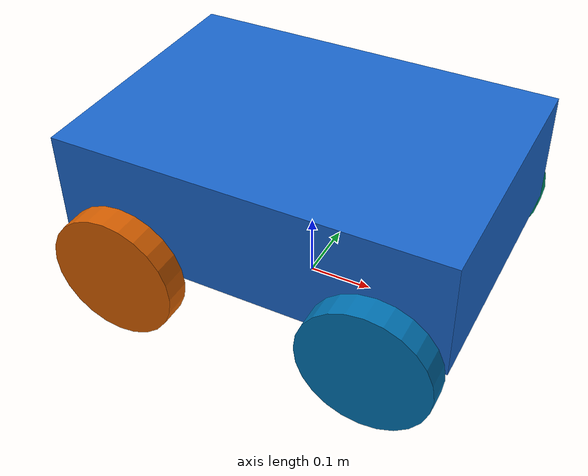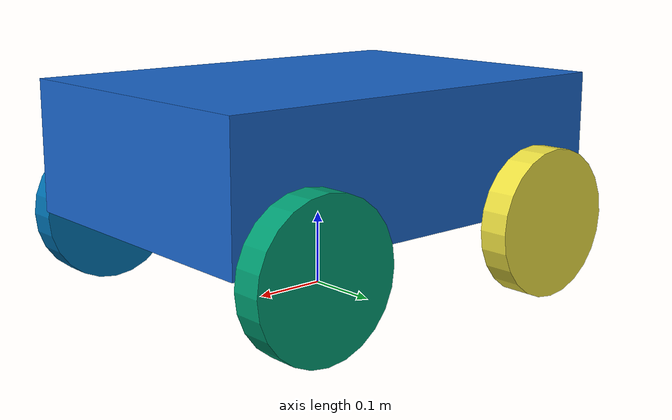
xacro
<?xml version="1.0"?>
<robot xmlns:xacro="http://www.ros.org/wiki/xacro" name="shopping_robot">
  <xacro:property name="length" value="0.60"/>
  <xacro:property name="width" value="0.50"/>
  <xacro:property name="height" value="0.18"/>
  <xacro:property name="wheel_radius" value="0.10"/>
  <xacro:property name="skid_track_factor" value="2.0"/>
  <xacro:property name="wheel_width" value="0.04"/>
  <xacro:arg name="anchor_count" default="3"/>
  <xacro:arg name="odom_source" default="ekf"/>
  <xacro:property name="anchor_0_x" value="0.0"/><xacro:property name="anchor_0_y" value="0.22"/>
  <xacro:property name="anchor_1_x" value="0.0"/><xacro:property name="anchor_1_y" value="-0.22"/>
  <xacro:property name="anchor_2_x" value="-0.25"/><xacro:property name="anchor_2_y" value="0.0"/>
  <link name="base_footprint"/>
  <joint name="base_joint" type="fixed"><parent link="base_footprint"/><child link="base_link"/><origin xyz="0 0 0.20"/></joint>
  <link name="base_link">
    <inertial><mass value="20"/><inertia ixx="${20*(width*width+height*height)/12}" iyy="${20*(length*length+height*height)/12}" izz="${20*(length*length+width*width)/12}" ixy="0" ixz="0" iyz="0"/></inertial>
    <visual><geometry><box size="${length} ${width-2*wheel_width} ${height}"/></geometry><material name="blue"><color rgba="0.1 0.4 0.8 1"/></material></visual>
    <collision><geometry><box size="${length} ${width-2*wheel_width} ${height}"/></geometry></collision>
  </link>
  <xacro:macro name="wheel" params="name x y">
    <link name="${name}_wheel">
      <inertial><mass value="0.6"/><inertia ixx="0.00158" iyy="0.003" izz="0.00158" ixy="0" ixz="0" iyz="0"/></inertial>
      <visual><origin rpy="${pi/2} 0 0"/><geometry><cylinder radius="${wheel_radius}" length="${wheel_width}"/></geometry></visual>
      <collision><origin rpy="${pi/2} 0 0"/><geometry><cylinder radius="${wheel_radius}" length="${wheel_width}"/></geometry></collision>
    </link>
    <joint name="${name}_joint" type="continuous"><parent link="base_link"/><child link="${name}_wheel"/><origin xyz="${x} ${y} -0.10"/><axis xyz="0 1 0"/><limit effort="20" velocity="15"/><dynamics damping="0.05"/></joint>
    <gazebo reference="${name}_wheel"><mu1>0.5</mu1><mu2>0.5</mu2></gazebo>
  </xacro:macro>
  <xacro:wheel name="front_left" x="${length*0.33}" y="${(width-wheel_width)/2}"/>
  <xacro:wheel name="rear_left" x="${-length*0.33}" y="${(width-wheel_width)/2}"/>
  <xacro:wheel name="front_right" x="${length*0.33}" y="${-(width-wheel_width)/2}"/>
  <xacro:wheel name="rear_right" x="${-length*0.33}" y="${-(width-wheel_width)/2}"/>
  <xacro:macro name="frame" params="name x y z">
    <link name="${name}"/>
    <joint name="${name}_joint" type="fixed"><parent link="base_link"/><child link="${name}"/><origin xyz="${x} ${y} ${z}"/></joint>
  </xacro:macro>
  <xacro:frame name="laser_link" x="0.18" y="0" z="0.16"/>
  <xacro:frame name="imu_link" x="0" y="0" z="0.05"/>
  <xacro:frame name="uwb_anchor_0" x="${anchor_0_x}" y="${anchor_0_y}" z="0.12"/>
  <xacro:frame name="uwb_anchor_1" x="${anchor_1_x}" y="${anchor_1_y}" z="0.12"/>
  <xacro:if value="${int('$(arg anchor_count)') == 3}"><xacro:frame name="uwb_anchor_2" x="${anchor_2_x}" y="${anchor_2_y}" z="0.12"/></xacro:if>
  <gazebo reference="laser_link">
    <sensor name="lidar" type="gpu_lidar"><always_on>true</always_on><update_rate>10</update_rate><topic>scan</topic><ignition_frame_id>laser_link</ignition_frame_id>
      <lidar><scan><horizontal><samples>720</samples><resolution>1</resolution><min_angle>-${pi}</min_angle><max_angle>${pi}</max_angle></horizontal></scan><range><min>0.12</min><max>12.0</max><resolution>0.01</resolution></range></lidar>
    </sensor>
  </gazebo>
  <gazebo reference="imu_link">
    <sensor name="imu" type="imu"><always_on>true</always_on><update_rate>50</update_rate><topic>imu</topic><ignition_frame_id>imu_link</ignition_frame_id>
      <!-- Six-axis IMU: yaw orientation is not an absolute heading measurement. -->
      <imu>
        <angular_velocity><x><noise type="gaussian"><mean>0</mean><stddev>0.005</stddev><bias_mean>0.0005</bias_mean><bias_stddev>0.0001</bias_stddev></noise></x><y><noise type="gaussian"><mean>0</mean><stddev>0.005</stddev><bias_mean>0.0005</bias_mean><bias_stddev>0.0001</bias_stddev></noise></y><z><noise type="gaussian"><mean>0</mean><stddev>0.005</stddev><bias_mean>0.0005</bias_mean><bias_stddev>0.0001</bias_stddev></noise></z></angular_velocity>
        <linear_acceleration><x><noise type="gaussian"><mean>0</mean><stddev>0.05</stddev><bias_mean>0.01</bias_mean><bias_stddev>0.002</bias_stddev></noise></x><y><noise type="gaussian"><mean>0</mean><stddev>0.05</stddev><bias_mean>0.01</bias_mean><bias_stddev>0.002</bias_stddev></noise></y><z><noise type="gaussian"><mean>0</mean><stddev>0.05</stddev><bias_mean>0.01</bias_mean><bias_stddev>0.002</bias_stddev></noise></z></linear_acceleration>
      </imu>
    </sensor>
  </gazebo>
  <gazebo>
    <plugin filename="libignition-gazebo-diff-drive-system.so" name="ignition::gazebo::systems::DiffDrive">
      <left_joint>front_left_joint</left_joint><left_joint>rear_left_joint</left_joint><right_joint>front_right_joint</right_joint><right_joint>rear_right_joint</right_joint>
      <wheel_separation>${(width-wheel_width)*skid_track_factor}</wheel_separation><wheel_radius>${wheel_radius}</wheel_radius>
      <topic>cmd_vel</topic><odom_topic>wheel_odom</odom_topic><tf_topic>wheel_tf</tf_topic><frame_id>odom</frame_id><child_frame_id>base_footprint</child_frame_id><odom_publish_frequency>50</odom_publish_frequency>
      <max_linear_velocity>1.1</max_linear_velocity><max_angular_velocity>1.5</max_angular_velocity>
      <!-- Strong command braking preserves the fault-stop time budget at 1.2 m/s.
           Physical skid-steer stopping still requires a Fortress regression. -->
      <max_linear_acceleration>0.8</max_linear_acceleration><min_linear_acceleration>-2.0</min_linear_acceleration>
      <max_angular_acceleration>1.5</max_angular_acceleration><min_angular_acceleration>-3.0</min_angular_acceleration>
    </plugin>
    <!-- Truth TF stays on an unbridged topic, isolated from the estimated TF tree. -->
    <plugin filename="ignition-gazebo-odometry-publisher-system" name="ignition::gazebo::systems::OdometryPublisher">
      <odom_frame>sim_world</odom_frame><robot_base_frame>base_footprint_gt</robot_base_frame>
      <odom_topic>/sim/ground_truth_odom</odom_topic><tf_topic>/sim/ground_truth_tf</tf_topic>
      <dimensions>2</dimensions><odom_publish_frequency>50</odom_publish_frequency>
    </plugin>
    <!-- Legacy truth mode alone owns /odom and the bridged odom TF. -->
    <xacro:if value="${'$(arg odom_source)' == 'ground_truth'}">
      <plugin filename="ignition-gazebo-odometry-publisher-system" name="ignition::gazebo::systems::OdometryPublisher">
        <odom_frame>odom</odom_frame><robot_base_frame>base_footprint</robot_base_frame>
        <odom_topic>odom</odom_topic><tf_topic>tf</tf_topic>
        <dimensions>2</dimensions><odom_publish_frequency>50</odom_publish_frequency>
      </plugin>
    </xacro:if>
    <plugin filename="ignition-gazebo-joint-state-publisher-system" name="ignition::gazebo::systems::JointStatePublisher"><topic>joint_states</topic></plugin>
  </gazebo>
</robot>
